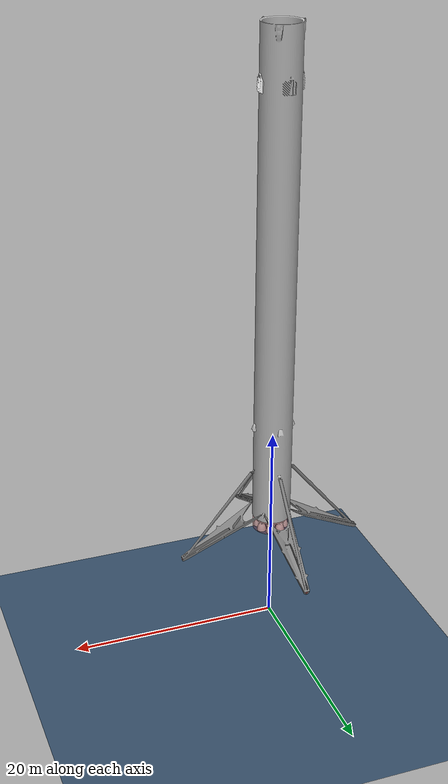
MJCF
<mujoco model="falcon9">
    <!-- 1. 编译器设置：自动处理网格文件路径 -->
    <compiler meshdir="." autolimits="true"/>

    <!-- 2. 资源定义：引入你导出的 obj 文件 -->
    <asset>
        <mesh name="body_mesh" file="body.obj"/>
        <mesh name="legs_mesh" file="legs.obj"/>
    </asset>

    <worldbody>
        <!-- 1. 地面：必须有，不然火箭掉进无底洞 -->
        <geom name="ground" type="plane" size="50 50 0.1" rgba=".2 .3 .4 1"/>

        <!-- 2. 火箭主体：这是唯一的根节点 -->
        <body name="rocket_main" pos="0 0 10">

            <!-- 整个火箭只允许在这里有一个 freejoint -->
            <freejoint name="root"/>

            <!-- 视觉模型：关闭碰撞 (contype="0" conaffinity="0") -->
            <geom name="visual_body" type="mesh" mesh="body_mesh" contype="0" conaffinity="0" rgba="0.8 0.8 0.8 1"/>

            <!-- 3. 支架：必须包裹在 rocket_main 内部 -->
            <body name="legs" pos="0 0 0">
                <!-- 视觉支架：同样关闭碰撞 -->
                <geom name="visual_legs" type="mesh" mesh="legs_mesh" contype="0" conaffinity="0" rgba="0.5 0.5 0.5 1"/>
            </body>

            <!-- 4. 碰撞体：为了让火箭能砸在地上而不是穿透地面 -->
            <!-- 注意：这里的 size 可能需要根据你的真实火箭尺寸微调 -->
            <geom name="collision_body" type="cylinder" size="1.8 23" pos="0 0 23" rgba="1 0 0 0.2"/>
            <geom name="pad_1" type="sphere" size="0.15" pos=" 9  0 -2" contype="1" conaffinity="1" rgba="1 0 0 0.5"/>
            <geom name="pad_2" type="sphere" size="0.15" pos="-9  0 -2" contype="1" conaffinity="1" rgba="1 0 0 0.5"/>
            <geom name="pad_3" type="sphere" size="0.15" pos=" 0 -9 -2" contype="1" conaffinity="1" rgba="1 0 0 0.5"/>
            <geom name="pad_4" type="sphere" size="0.15" pos=" 0  9 -2" contype="1" conaffinity="1" rgba="1 0 0 0.5"/>
        </body>
    </worldbody>
</mujoco>
